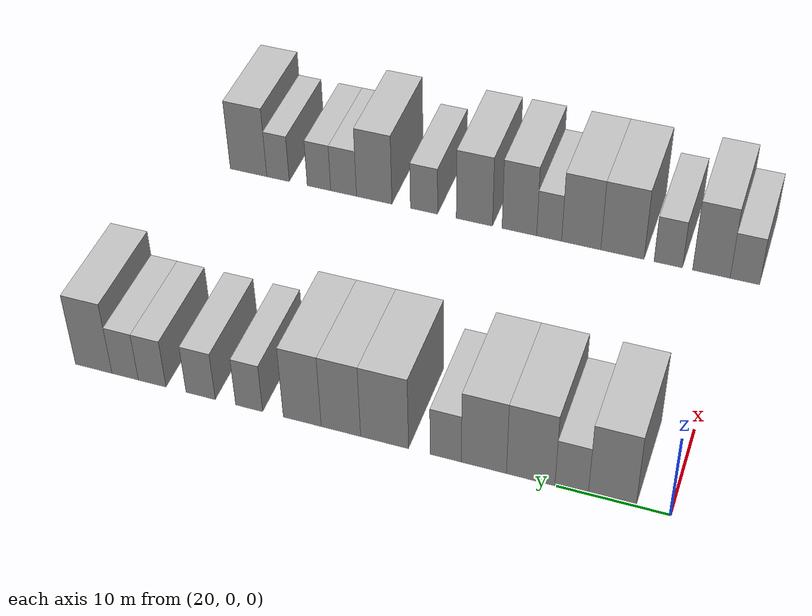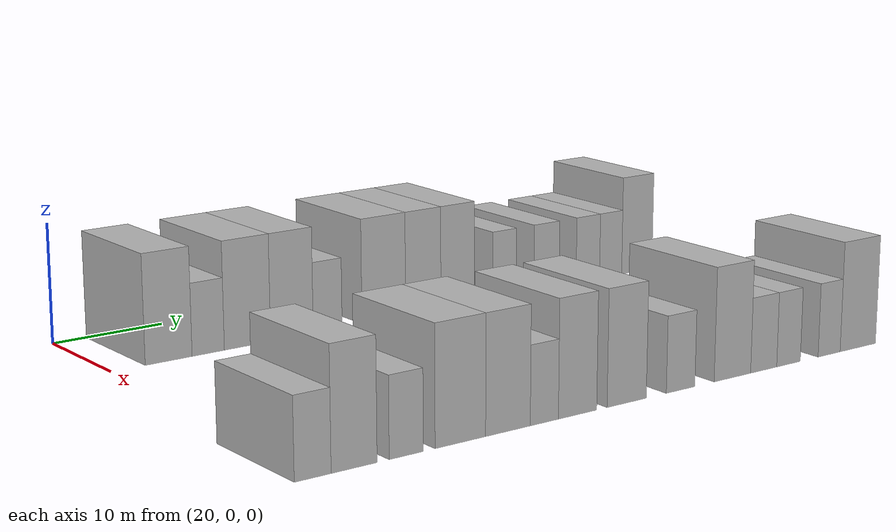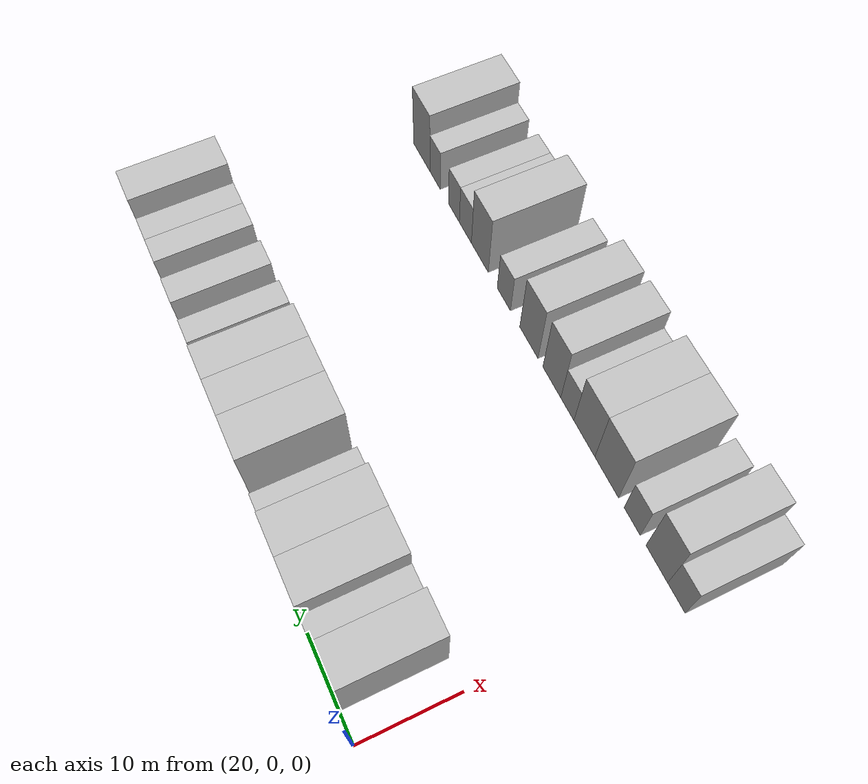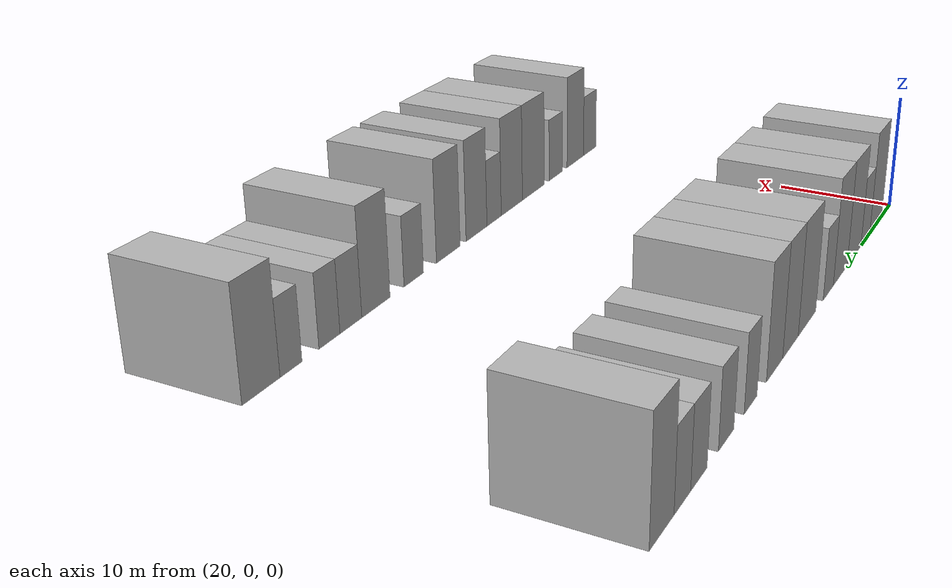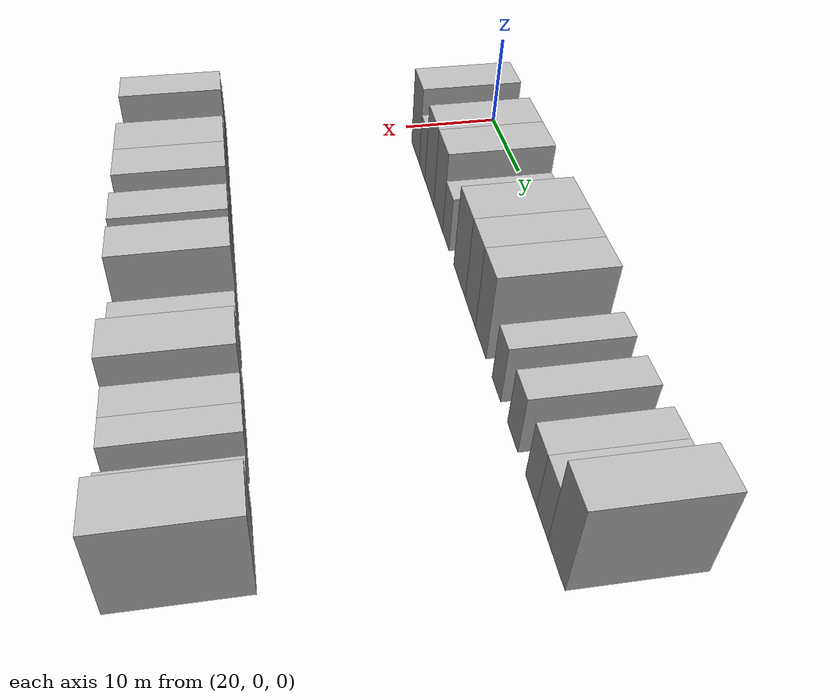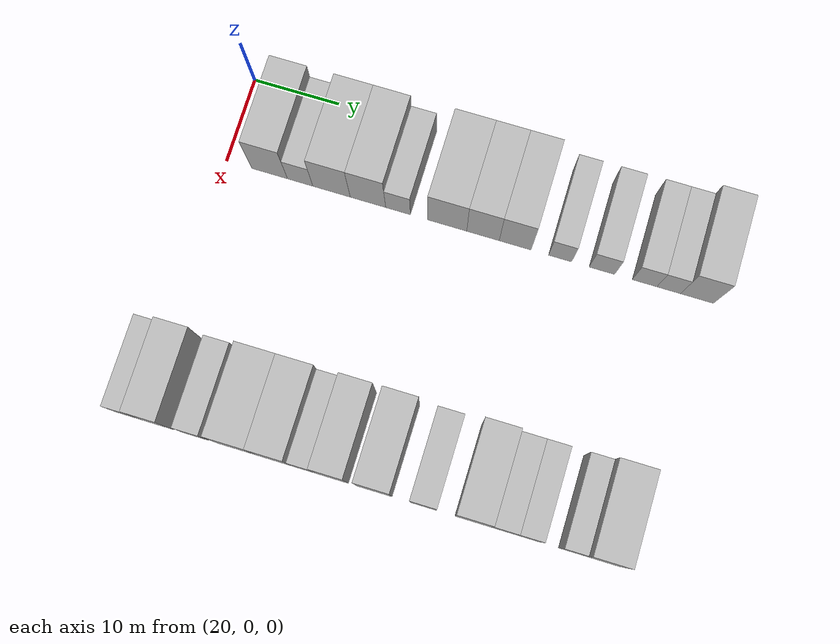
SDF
<sdf version="1.6">
 <world name="default">
  <model name="building_57">
   <static>1</static>
   <pose>25.0000 5.0952 0 0.000000 0.000000 0.000000</pose>
   <link name="link">
    <pose>0 0 4.50 0 0 0</pose>
    <collision name="collision"><geometry><box><size>10.0000 4.1995 9.0000</size></box></geometry></collision>
    <visual name="visual">
     <cast_shadows>0</cast_shadows>
     <geometry><box><size>10.0000 4.1995 9.0000</size></box></geometry>
     <material>
      <script>
       <uri>model://HANNAS_wall/materials/scripts</uri>
       <uri>model://HANNAS_wall/materials/textures</uri>
       <name>vrc/HANNAS_wall</name>
      </script>
     </material>
    </visual>
   </link>
  </model>
  <model name="building_58">
   <static>1</static>
   <pose>25.0000 8.6766 0 0.000000 0.000000 0.000000</pose>
   <link name="link">
    <pose>0 0 3.00 0 0 0</pose>
    <collision name="collision"><geometry><box><size>10.0000 2.9633 6.0000</size></box></geometry></collision>
    <visual name="visual">
     <cast_shadows>0</cast_shadows>
     <geometry><box><size>10.0000 2.9633 6.0000</size></box></geometry>
     <material>
      <script>
       <uri>model://HANNAS_wall/materials/scripts</uri>
       <uri>model://HANNAS_wall/materials/textures</uri>
       <name>vrc/HANNAS_wall</name>
      </script>
     </material>
    </visual>
   </link>
  </model>
  <model name="building_59">
   <static>1</static>
   <pose>25.0000 12.3360 0 0.000000 0.000000 0.000000</pose>
   <link name="link">
    <pose>0 0 4.50 0 0 0</pose>
    <collision name="collision"><geometry><box><size>10.0000 4.3555 9.0000</size></box></geometry></collision>
    <visual name="visual">
     <cast_shadows>0</cast_shadows>
     <geometry><box><size>10.0000 4.3555 9.0000</size></box></geometry>
     <material>
      <script>
       <uri>model://HANNAS_wall/materials/scripts</uri>
       <uri>model://HANNAS_wall/materials/textures</uri>
       <name>vrc/HANNAS_wall</name>
      </script>
     </material>
    </visual>
   </link>
  </model>
  <model name="building_60">
   <static>1</static>
   <pose>25.0000 16.5765 0 0.000000 0.000000 0.000000</pose>
   <link name="link">
    <pose>0 0 4.50 0 0 0</pose>
    <collision name="collision"><geometry><box><size>10.0000 4.1255 9.0000</size></box></geometry></collision>
    <visual name="visual">
     <cast_shadows>0</cast_shadows>
     <geometry><box><size>10.0000 4.1255 9.0000</size></box></geometry>
     <material>
      <script>
       <uri>model://HANNAS_wall/materials/scripts</uri>
       <uri>model://HANNAS_wall/materials/textures</uri>
       <name>vrc/HANNAS_wall</name>
      </script>
     </material>
    </visual>
   </link>
  </model>
  <model name="building_61">
   <static>1</static>
   <pose>25.0000 20.0691 0 0.000000 0.000000 0.000000</pose>
   <link name="link">
    <pose>0 0 3.00 0 0 0</pose>
    <collision name="collision"><geometry><box><size>10.0000 2.8598 6.0000</size></box></geometry></collision>
    <visual name="visual">
     <cast_shadows>0</cast_shadows>
     <geometry><box><size>10.0000 2.8598 6.0000</size></box></geometry>
     <material>
      <script>
       <uri>model://HANNAS_wall/materials/scripts</uri>
       <uri>model://HANNAS_wall/materials/textures</uri>
       <name>vrc/HANNAS_wall</name>
      </script>
     </material>
    </visual>
   </link>
  </model>
  <model name="building_62">
   <static>1</static>
   <pose>25.0000 25.7467 0 0.000000 0.000000 0.000000</pose>
   <link name="link">
    <pose>0 0 4.50 0 0 0</pose>
    <collision name="collision"><geometry><box><size>10.0000 4.4954 9.0000</size></box></geometry></collision>
    <visual name="visual">
     <cast_shadows>0</cast_shadows>
     <geometry><box><size>10.0000 4.4954 9.0000</size></box></geometry>
     <material>
      <script>
       <uri>model://HANNAS_wall/materials/scripts</uri>
       <uri>model://HANNAS_wall/materials/textures</uri>
       <name>vrc/HANNAS_wall</name>
      </script>
     </material>
    </visual>
   </link>
  </model>
  <model name="building_63">
   <static>1</static>
   <pose>25.0000 29.8601 0 0.000000 0.000000 0.000000</pose>
   <link name="link">
    <pose>0 0 4.50 0 0 0</pose>
    <collision name="collision"><geometry><box><size>10.0000 3.7314 9.0000</size></box></geometry></collision>
    <visual name="visual">
     <cast_shadows>0</cast_shadows>
     <geometry><box><size>10.0000 3.7314 9.0000</size></box></geometry>
     <material>
      <script>
       <uri>model://HANNAS_wall/materials/scripts</uri>
       <uri>model://HANNAS_wall/materials/textures</uri>
       <name>vrc/HANNAS_wall</name>
      </script>
     </material>
    </visual>
   </link>
  </model>
  <model name="building_64">
   <static>1</static>
   <pose>25.0000 33.5474 0 0.000000 0.000000 0.000000</pose>
   <link name="link">
    <pose>0 0 4.50 0 0 0</pose>
    <collision name="collision"><geometry><box><size>10.0000 3.6432 9.0000</size></box></geometry></collision>
    <visual name="visual">
     <cast_shadows>0</cast_shadows>
     <geometry><box><size>10.0000 3.6432 9.0000</size></box></geometry>
     <material>
      <script>
       <uri>model://HANNAS_wall/materials/scripts</uri>
       <uri>model://HANNAS_wall/materials/textures</uri>
       <name>vrc/HANNAS_wall</name>
      </script>
     </material>
    </visual>
   </link>
  </model>
  <model name="building_65">
   <static>1</static>
   <pose>25.0000 38.6850 0 0.000000 0.000000 0.000000</pose>
   <link name="link">
    <pose>0 0 3.00 0 0 0</pose>
    <collision name="collision"><geometry><box><size>10.0000 2.6320 6.0000</size></box></geometry></collision>
    <visual name="visual">
     <cast_shadows>0</cast_shadows>
     <geometry><box><size>10.0000 2.6320 6.0000</size></box></geometry>
     <material>
      <script>
       <uri>model://HANNAS_wall/materials/scripts</uri>
       <uri>model://HANNAS_wall/materials/textures</uri>
       <name>vrc/HANNAS_wall</name>
      </script>
     </material>
    </visual>
   </link>
  </model>
  <model name="building_66">
   <static>1</static>
   <pose>25.0000 43.4471 0 0.000000 0.000000 0.000000</pose>
   <link name="link">
    <pose>0 0 3.00 0 0 0</pose>
    <collision name="collision"><geometry><box><size>10.0000 2.8922 6.0000</size></box></geometry></collision>
    <visual name="visual">
     <cast_shadows>0</cast_shadows>
     <geometry><box><size>10.0000 2.8922 6.0000</size></box></geometry>
     <material>
      <script>
       <uri>model://HANNAS_wall/materials/scripts</uri>
       <uri>model://HANNAS_wall/materials/textures</uri>
       <name>vrc/HANNAS_wall</name>
      </script>
     </material>
    </visual>
   </link>
  </model>
  <model name="building_67">
   <static>1</static>
   <pose>25.0000 48.2819 0 0.000000 0.000000 0.000000</pose>
   <link name="link">
    <pose>0 0 3.00 0 0 0</pose>
    <collision name="collision"><geometry><box><size>10.0000 2.7774 6.0000</size></box></geometry></collision>
    <visual name="visual">
     <cast_shadows>0</cast_shadows>
     <geometry><box><size>10.0000 2.7774 6.0000</size></box></geometry>
     <material>
      <script>
       <uri>model://HANNAS_wall/materials/scripts</uri>
       <uri>model://HANNAS_wall/materials/textures</uri>
       <name>vrc/HANNAS_wall</name>
      </script>
     </material>
    </visual>
   </link>
  </model>
  <model name="building_68">
   <static>1</static>
   <pose>25.0000 51.0041 0 0.000000 0.000000 0.000000</pose>
   <link name="link">
    <pose>0 0 3.00 0 0 0</pose>
    <collision name="collision"><geometry><box><size>10.0000 2.6670 6.0000</size></box></geometry></collision>
    <visual name="visual">
     <cast_shadows>0</cast_shadows>
     <geometry><box><size>10.0000 2.6670 6.0000</size></box></geometry>
     <material>
      <script>
       <uri>model://HANNAS_wall/materials/scripts</uri>
       <uri>model://HANNAS_wall/materials/textures</uri>
       <name>vrc/HANNAS_wall</name>
      </script>
     </material>
    </visual>
   </link>
  </model>
  <model name="building_69">
   <static>1</static>
   <pose>25.0000 54.1952 0 0.000000 0.000000 0.000000</pose>
   <link name="link">
    <pose>0 0 4.50 0 0 0</pose>
    <collision name="collision"><geometry><box><size>10.0000 3.7153 9.0000</size></box></geometry></collision>
    <visual name="visual">
     <cast_shadows>0</cast_shadows>
     <geometry><box><size>10.0000 3.7153 9.0000</size></box></geometry>
     <material>
      <script>
       <uri>model://HANNAS_wall/materials/scripts</uri>
       <uri>model://HANNAS_wall/materials/textures</uri>
       <name>vrc/HANNAS_wall</name>
      </script>
     </material>
    </visual>
   </link>
  </model>
  <model name="building_159">
   <static>1</static>
   <pose>55.0000 -0.8162 0 0.000000 0.000000 0.000000</pose>
   <link name="link">
    <pose>0 0 3.00 0 0 0</pose>
    <collision name="collision"><geometry><box><size>10.0000 2.9043 6.0000</size></box></geometry></collision>
    <visual name="visual">
     <cast_shadows>0</cast_shadows>
     <geometry><box><size>10.0000 2.9043 6.0000</size></box></geometry>
     <material>
      <script>
       <uri>model://HANNAS_wall/materials/scripts</uri>
       <uri>model://HANNAS_wall/materials/textures</uri>
       <name>vrc/HANNAS_wall</name>
      </script>
     </material>
    </visual>
   </link>
  </model>
  <model name="building_160">
   <static>1</static>
   <pose>55.0000 2.4944 0 0.000000 0.000000 0.000000</pose>
   <link name="link">
    <pose>0 0 4.50 0 0 0</pose>
    <collision name="collision"><geometry><box><size>10.0000 3.7171 9.0000</size></box></geometry></collision>
    <visual name="visual">
     <cast_shadows>0</cast_shadows>
     <geometry><box><size>10.0000 3.7171 9.0000</size></box></geometry>
     <material>
      <script>
       <uri>model://HANNAS_wall/materials/scripts</uri>
       <uri>model://HANNAS_wall/materials/textures</uri>
       <name>vrc/HANNAS_wall</name>
      </script>
     </material>
    </visual>
   </link>
  </model>
  <model name="building_161">
   <static>1</static>
   <pose>55.0000 6.7826 0 0.000000 0.000000 0.000000</pose>
   <link name="link">
    <pose>0 0 3.00 0 0 0</pose>
    <collision name="collision"><geometry><box><size>10.0000 2.8593 6.0000</size></box></geometry></collision>
    <visual name="visual">
     <cast_shadows>0</cast_shadows>
     <geometry><box><size>10.0000 2.8593 6.0000</size></box></geometry>
     <material>
      <script>
       <uri>model://HANNAS_wall/materials/scripts</uri>
       <uri>model://HANNAS_wall/materials/textures</uri>
       <name>vrc/HANNAS_wall</name>
      </script>
     </material>
    </visual>
   </link>
  </model>
  <model name="building_162">
   <static>1</static>
   <pose>55.0000 11.4094 0 0.000000 0.000000 0.000000</pose>
   <link name="link">
    <pose>0 0 4.50 0 0 0</pose>
    <collision name="collision"><geometry><box><size>10.0000 4.3941 9.0000</size></box></geometry></collision>
    <visual name="visual">
     <cast_shadows>0</cast_shadows>
     <geometry><box><size>10.0000 4.3941 9.0000</size></box></geometry>
     <material>
      <script>
       <uri>model://HANNAS_wall/materials/scripts</uri>
       <uri>model://HANNAS_wall/materials/textures</uri>
       <name>vrc/HANNAS_wall</name>
      </script>
     </material>
    </visual>
   </link>
  </model>
  <model name="building_163">
   <static>1</static>
   <pose>55.0000 15.6147 0 0.000000 0.000000 0.000000</pose>
   <link name="link">
    <pose>0 0 4.50 0 0 0</pose>
    <collision name="collision"><geometry><box><size>10.0000 4.0167 9.0000</size></box></geometry></collision>
    <visual name="visual">
     <cast_shadows>0</cast_shadows>
     <geometry><box><size>10.0000 4.0167 9.0000</size></box></geometry>
     <material>
      <script>
       <uri>model://HANNAS_wall/materials/scripts</uri>
       <uri>model://HANNAS_wall/materials/textures</uri>
       <name>vrc/HANNAS_wall</name>
      </script>
     </material>
    </visual>
   </link>
  </model>
  <model name="building_164">
   <static>1</static>
   <pose>55.0000 18.9188 0 0.000000 0.000000 0.000000</pose>
   <link name="link">
    <pose>0 0 3.00 0 0 0</pose>
    <collision name="collision"><geometry><box><size>10.0000 2.5915 6.0000</size></box></geometry></collision>
    <visual name="visual">
     <cast_shadows>0</cast_shadows>
     <geometry><box><size>10.0000 2.5915 6.0000</size></box></geometry>
     <material>
      <script>
       <uri>model://HANNAS_wall/materials/scripts</uri>
       <uri>model://HANNAS_wall/materials/textures</uri>
       <name>vrc/HANNAS_wall</name>
      </script>
     </material>
    </visual>
   </link>
  </model>
  <model name="building_165">
   <static>1</static>
   <pose>55.0000 22.0199 0 0.000000 0.000000 0.000000</pose>
   <link name="link">
    <pose>0 0 4.50 0 0 0</pose>
    <collision name="collision"><geometry><box><size>10.0000 3.6106 9.0000</size></box></geometry></collision>
    <visual name="visual">
     <cast_shadows>0</cast_shadows>
     <geometry><box><size>10.0000 3.6106 9.0000</size></box></geometry>
     <material>
      <script>
       <uri>model://HANNAS_wall/materials/scripts</uri>
       <uri>model://HANNAS_wall/materials/textures</uri>
       <name>vrc/HANNAS_wall</name>
      </script>
     </material>
    </visual>
   </link>
  </model>
  <model name="building_166">
   <static>1</static>
   <pose>55.0000 26.7420 0 0.000000 0.000000 0.000000</pose>
   <link name="link">
    <pose>0 0 4.50 0 0 0</pose>
    <collision name="collision"><geometry><box><size>10.0000 3.8337 9.0000</size></box></geometry></collision>
    <visual name="visual">
     <cast_shadows>0</cast_shadows>
     <geometry><box><size>10.0000 3.8337 9.0000</size></box></geometry>
     <material>
      <script>
       <uri>model://HANNAS_wall/materials/scripts</uri>
       <uri>model://HANNAS_wall/materials/textures</uri>
       <name>vrc/HANNAS_wall</name>
      </script>
     </material>
    </visual>
   </link>
  </model>
  <model name="building_167">
   <static>1</static>
   <pose>55.0000 32.1127 0 0.000000 0.000000 0.000000</pose>
   <link name="link">
    <pose>0 0 3.00 0 0 0</pose>
    <collision name="collision"><geometry><box><size>10.0000 2.9077 6.0000</size></box></geometry></collision>
    <visual name="visual">
     <cast_shadows>0</cast_shadows>
     <geometry><box><size>10.0000 2.9077 6.0000</size></box></geometry>
     <material>
      <script>
       <uri>model://HANNAS_wall/materials/scripts</uri>
       <uri>model://HANNAS_wall/materials/textures</uri>
       <name>vrc/HANNAS_wall</name>
      </script>
     </material>
    </visual>
   </link>
  </model>
  <model name="building_168">
   <static>1</static>
   <pose>55.0000 37.4971 0 0.000000 0.000000 0.000000</pose>
   <link name="link">
    <pose>0 0 4.50 0 0 0</pose>
    <collision name="collision"><geometry><box><size>10.0000 3.8612 9.0000</size></box></geometry></collision>
    <visual name="visual">
     <cast_shadows>0</cast_shadows>
     <geometry><box><size>10.0000 3.8612 9.0000</size></box></geometry>
     <material>
      <script>
       <uri>model://HANNAS_wall/materials/scripts</uri>
       <uri>model://HANNAS_wall/materials/textures</uri>
       <name>vrc/HANNAS_wall</name>
      </script>
     </material>
    </visual>
   </link>
  </model>
  <model name="building_169">
   <static>1</static>
   <pose>55.0000 40.8422 0 0.000000 0.000000 0.000000</pose>
   <link name="link">
    <pose>0 0 3.00 0 0 0</pose>
    <collision name="collision"><geometry><box><size>10.0000 2.8290 6.0000</size></box></geometry></collision>
    <visual name="visual">
     <cast_shadows>0</cast_shadows>
     <geometry><box><size>10.0000 2.8290 6.0000</size></box></geometry>
     <material>
      <script>
       <uri>model://HANNAS_wall/materials/scripts</uri>
       <uri>model://HANNAS_wall/materials/textures</uri>
       <name>vrc/HANNAS_wall</name>
      </script>
     </material>
    </visual>
   </link>
  </model>
  <model name="building_170">
   <static>1</static>
   <pose>55.0000 43.5596 0 0.000000 0.000000 0.000000</pose>
   <link name="link">
    <pose>0 0 3.00 0 0 0</pose>
    <collision name="collision"><geometry><box><size>10.0000 2.6058 6.0000</size></box></geometry></collision>
    <visual name="visual">
     <cast_shadows>0</cast_shadows>
     <geometry><box><size>10.0000 2.6058 6.0000</size></box></geometry>
     <material>
      <script>
       <uri>model://HANNAS_wall/materials/scripts</uri>
       <uri>model://HANNAS_wall/materials/textures</uri>
       <name>vrc/HANNAS_wall</name>
      </script>
     </material>
    </visual>
   </link>
  </model>
  <model name="building_171">
   <static>1</static>
   <pose>55.0000 48.1177 0 0.000000 0.000000 0.000000</pose>
   <link name="link">
    <pose>0 0 3.00 0 0 0</pose>
    <collision name="collision"><geometry><box><size>10.0000 2.5105 6.0000</size></box></geometry></collision>
    <visual name="visual">
     <cast_shadows>0</cast_shadows>
     <geometry><box><size>10.0000 2.5105 6.0000</size></box></geometry>
     <material>
      <script>
       <uri>model://HANNAS_wall/materials/scripts</uri>
       <uri>model://HANNAS_wall/materials/textures</uri>
       <name>vrc/HANNAS_wall</name>
      </script>
     </material>
    </visual>
   </link>
  </model>
  <model name="building_172">
   <static>1</static>
   <pose>55.0000 51.4322 0 0.000000 0.000000 0.000000</pose>
   <link name="link">
    <pose>0 0 4.50 0 0 0</pose>
    <collision name="collision"><geometry><box><size>10.0000 4.1185 9.0000</size></box></geometry></collision>
    <visual name="visual">
     <cast_shadows>0</cast_shadows>
     <geometry><box><size>10.0000 4.1185 9.0000</size></box></geometry>
     <material>
      <script>
       <uri>model://HANNAS_wall/materials/scripts</uri>
       <uri>model://HANNAS_wall/materials/textures</uri>
       <name>vrc/HANNAS_wall</name>
      </script>
     </material>
    </visual>
   </link>
  </model>
 </world>
</sdf>
